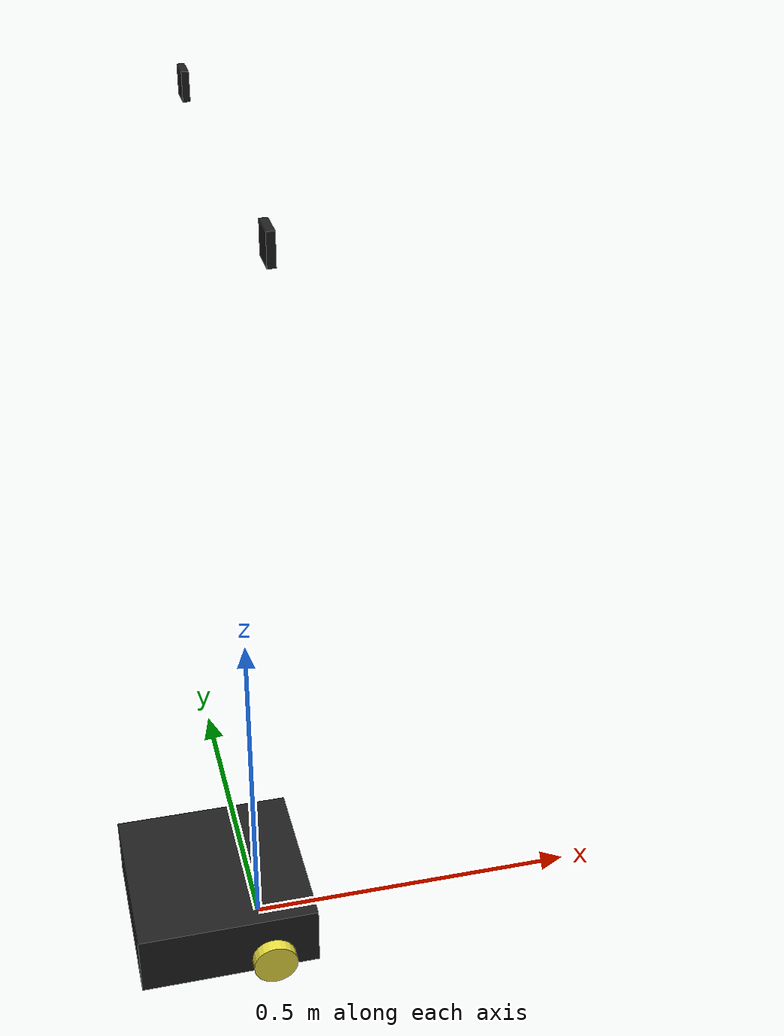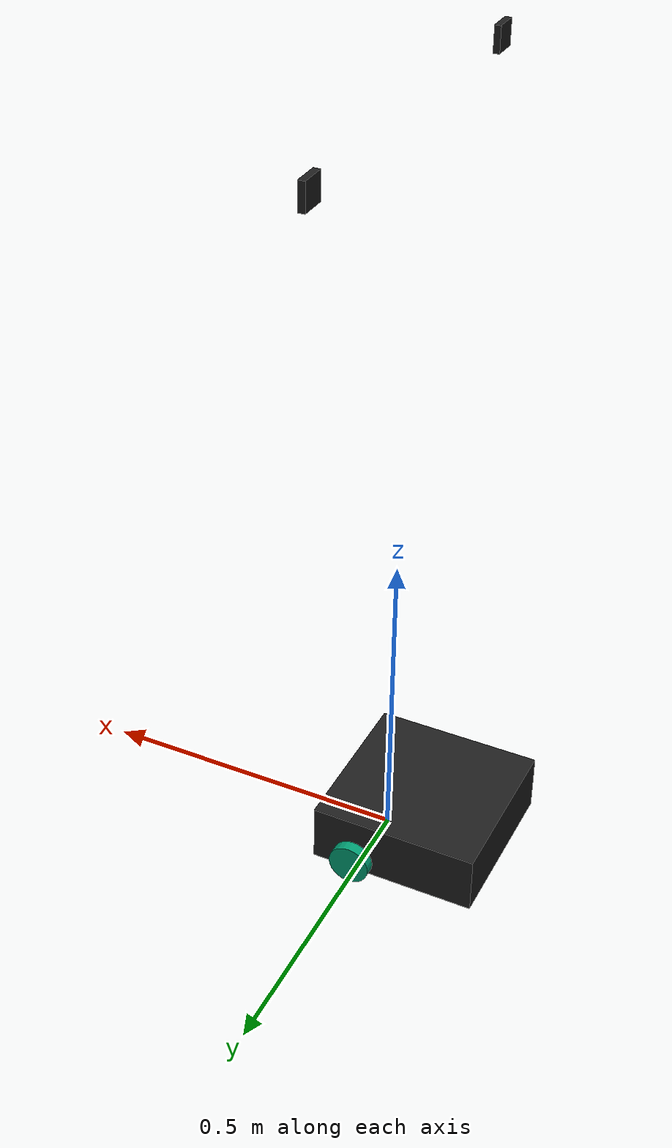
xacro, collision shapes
<?xml version="1.0" ?>
<robot name="turtlebot3_waffle" xmlns:xacro="http://ros.org/wiki/xacro">
  <xacro:include filename="$(find turtlebot3_description)/urdf/common_properties.xacro"/>
  <xacro:include filename="$(find turtlebot3_description)/urdf/turtlebot3_waffle.gazebo.xacro"/>

  <xacro:include filename="$(find stereo_loc)/models/left_camera.xacro"/>
  <xacro:include filename="$(find stereo_loc)/models/right_camera.xacro"/>
  <xacro:property name="r200_cam_rgb_px" value="0.005"/>
  <xacro:property name="r200_cam_rgb_py" value="0.018"/>
  <xacro:property name="r200_cam_rgb_pz" value="0.013"/>
  <xacro:property name="r200_cam_depth_offset" value="0.01"/>

  <link name="base_footprint"/>

  <joint name="base_joint" type="fixed">
    <parent link="base_footprint"/>
    <child link="base_link" />
    <origin xyz="0 0 0.010" rpy="0 0 0"/>
  </joint>

  <link name="base_link">
    <visual>
      <origin xyz="-0.064 0 0.0" rpy="0 0 0"/>
      <geometry>
        <mesh filename="package://turtlebot3_description/meshes/bases/waffle_base.stl" scale="0.001 0.001 0.001"/>
      </geometry>
      <material name="light_black"/>
    </visual>

    <collision>
      <origin xyz="-0.064 0 0.047" rpy="0 0 0"/>
      <geometry>
        <box size="0.266 0.266 0.094"/>
      </geometry>
    </collision>

    <inertial>
      <origin xyz="0 0 0" rpy="0 0 0"/>
      <mass value="1.3729096e+00"/>
      <inertia ixx="8.7002718e-03" ixy="-4.7576583e-05" ixz="1.1160499e-04"
               iyy="8.6195418e-03" iyz="-3.5422299e-06"
               izz="1.4612727e-02" />
    </inertial>
  </link>

  <joint name="wheel_left_joint" type="continuous">
    <parent link="base_link"/>
    <child link="wheel_left_link"/>
    <origin xyz="0.0 0.144 0.023" rpy="-1.57 0 0"/>
    <axis xyz="0 0 1"/>
  </joint>

  <link name="wheel_left_link">
    <visual>
      <origin xyz="0 0 0" rpy="1.57 0 0"/>
      <geometry>
        <mesh filename="package://turtlebot3_description/meshes/wheels/left_tire.stl" scale="0.001 0.001 0.001"/>
      </geometry>
      <material name="dark"/>
    </visual>

    <collision>
      <origin xyz="0 0 0" rpy="0 0 0"/>
      <geometry>
        <cylinder length="0.018" radius="0.033"/>
      </geometry>
    </collision>

    <inertial>
      <origin xyz="0 0 0" />
      <mass value="2.8498940e-02" />
      <inertia ixx="1.1175580e-05" ixy="-4.2369783e-11" ixz="-5.9381719e-09"
               iyy="1.1192413e-05" iyz="-1.4400107e-11"
               izz="2.0712558e-05" />
      </inertial>
  </link>

  <joint name="wheel_right_joint" type="continuous">
    <parent link="base_link"/>
    <child link="wheel_right_link"/>
    <origin xyz="0.0 -0.144 0.023" rpy="-1.57 0 0"/>
    <axis xyz="0 0 1"/>
  </joint>

  <link name="wheel_right_link">
    <visual>
      <origin xyz="0 0 0" rpy="1.57 0 0"/>
      <geometry>
        <mesh filename="package://turtlebot3_description/meshes/wheels/right_tire.stl" scale="0.001 0.001 0.001"/>
      </geometry>
      <material name="dark"/>
    </visual>

    <collision>
      <origin xyz="0 0 0" rpy="0 0 0"/>
      <geometry>
        <cylinder length="0.018" radius="0.033"/>
      </geometry>
    </collision>

    <inertial>
      <origin xyz="0 0 0" />
      <mass value="2.8498940e-02" />
      <inertia ixx="1.1175580e-05" ixy="-4.2369783e-11" ixz="-5.9381719e-09"
               iyy="1.1192413e-05" iyz="-1.4400107e-11"
               izz="2.0712558e-05" />
      </inertial>
  </link>

  <joint name="caster_back_right_joint" type="fixed">
    <parent link="base_link"/>
    <child link="caster_back_right_link"/>
    <origin xyz="-0.177 -0.064 -0.004" rpy="-1.57 0 0"/>
  </joint>

  <link name="caster_back_right_link">
    <collision>
      <origin xyz="0 0.001 0" rpy="0 0 0"/>
      <geometry>
        <box size="0.030 0.009 0.020"/>
      </geometry>
    </collision>

    <inertial>
      <origin xyz="0 0 0" />
      <mass value="0.005" />
      <inertia ixx="0.001" ixy="0.0" ixz="0.0"
               iyy="0.001" iyz="0.0"
               izz="0.001" />
    </inertial>
  </link>

  <joint name="caster_back_left_joint" type="fixed">
    <parent link="base_link"/>
    <child link="caster_back_left_link"/>
    <origin xyz="-0.177 0.064 -0.004" rpy="-1.57 0 0"/>
  </joint>

  <link name="caster_back_left_link">
    <collision>
      <origin xyz="0 0.001 0" rpy="0 0 0"/>
      <geometry>
        <box size="0.030 0.009 0.020"/>
      </geometry>
    </collision>

    <inertial>
      <origin xyz="0 0 0" />
      <mass value="0.005" />
      <inertia ixx="0.001" ixy="0.0" ixz="0.0"
               iyy="0.001" iyz="0.0"
               izz="0.001" />
    </inertial>
  </link>

  <joint name="imu_joint" type="fixed">
    <parent link="base_link"/>
    <child link="imu_link"/>
    <origin xyz="0.0 0 0.068" rpy="0 0 0"/>
  </joint>

  <link name="imu_link"/>

  <joint name="camera1_joint" type="fixed">
    <origin xyz="0 0.3 1.2" rpy="0 0 0"/>
    <parent link="base_link"/>
    <child link="camera1_link"/>
  </joint>

  <xacro:left_camera prefix="camera1"/>

  <joint name="camera2_joint" type="fixed">
    <origin xyz="0.0 -0.3 1.2" rpy="0 0 0"/>
    <parent link="base_link"/>
    <child link="camera2_link"/>
  </joint>

  <xacro:right_camera prefix="camera2"/>

</robot>

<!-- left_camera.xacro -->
<robot xmlns:xacro="http://ros.org/wiki/xacro" name="camera">

    <xacro:macro name="left_camera" params="prefix:=camera">
        <!-- Create laser reference frame -->
        <link name="${prefix}_link">
            <inertial>
                <mass value="0.0" />
                <origin xyz="0 0 0" />
                <inertia ixx="0.01" ixy="0.0" ixz="0.0"
                         iyy="0.01" iyz="0.0"
                         izz="0.01" />
            </inertial>

            <visual>
                <origin xyz=" 0 0 0 " rpy="0 0 0" />
                <geometry>
                    <box size="0.01 0.04 0.04" />
                </geometry>
                <material name="black"/>
            </visual>

            <collision>
                <origin xyz="0.0 0.0 0.0" rpy="0 0 0" />
                <geometry>
                    <box size="0.01 0.04 0.04" />
                </geometry>
            </collision>
        </link>
        <gazebo reference="${prefix}_link">
            <material>Gazebo/Black</material>
        </gazebo>

        <gazebo reference="${prefix}_link">
            <sensor type="camera" name="camera_node">
                <update_rate>30.0</update_rate>
                <camera name="head">
                    <horizontal_fov>0.28</horizontal_fov>
                    <image>
                        <width>1280</width>
                        <height>720</height>
                        <format>R8G8B8</format>
                    </image>
                    <clip>
                        <near>0.02</near>
                        <far>300</far>
                    </clip>
                    <noise>
                        <type>gaussian</type>
                        <mean>0.0</mean>
                        <stddev>0.000</stddev>
                    </noise>
                </camera>
                <plugin name="gazebo_camera" filename="libgazebo_ros_camera.so">
                    <alwaysOn>true</alwaysOn>
                    <updateRate>0.0</updateRate>
                    <cameraName>left_camera</cameraName>
                    <imageTopicName>image_raw</imageTopicName>
                    <cameraInfoTopicName>camera_info</cameraInfoTopicName>
                    <frameName>camera_link</frameName>
                    <hackBaseline>0.07</hackBaseline>
                    <distortionK1>0.0</distortionK1>
                    <distortionK2>0.0</distortionK2>
                    <distortionK3>0.0</distortionK3>
                    <distortionT1>0.0</distortionT1>
                    <distortionT2>0.0</distortionT2>
                </plugin>
            </sensor>
        </gazebo>

    </xacro:macro>
</robot>

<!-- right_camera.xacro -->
<robot xmlns:xacro="http://ros.org/wiki/xacro" name="camera">

    <xacro:macro name="right_camera" params="prefix:=camera">
        <!-- Create laser reference frame -->
        <link name="${prefix}_link">
            <inertial>
                <mass value="0.0" />
                <origin xyz="0 0 0" />
                <inertia ixx="0.01" ixy="0.0" ixz="0.0"
                         iyy="0.01" iyz="0.0"
                         izz="0.01" />
            </inertial>

            <visual>
                <origin xyz=" 0 0 0 " rpy="0 0 0" />
                <geometry>
                    <box size="0.01 0.04 0.04" />
                </geometry>
                <material name="black"/>
            </visual>

            <collision>
                <origin xyz="0.0 0.0 0.0" rpy="0 0 0" />
                <geometry>
                    <box size="0.01 0.04 0.04" />
                </geometry>
            </collision>
        </link>
        <gazebo reference="${prefix}_link">
            <material>Gazebo/Black</material>
        </gazebo>

        <gazebo reference="${prefix}_link">
            <sensor type="camera" name="camera_node">
                <update_rate>30.0</update_rate>
                <camera name="head">
                    <horizontal_fov>0.28</horizontal_fov>
                    <image>
                        <width>1280</width>
                        <height>720</height>
                        <format>R8G8B8</format>
                    </image>
                    <clip>
                        <near>0.02</near>
                        <far>300</far>
                    </clip>
                    <noise>
                        <type>gaussian</type>
                        <mean>0.0</mean>
                        <stddev>0.000</stddev>
                    </noise>
                </camera>
                <plugin name="gazebo_camera" filename="libgazebo_ros_camera.so">
                    <alwaysOn>true</alwaysOn>
                    <updateRate>0.0</updateRate>
                    <cameraName>right_camera</cameraName>
                    <imageTopicName>image_raw</imageTopicName>
                    <cameraInfoTopicName>camera_info</cameraInfoTopicName>
                    <frameName>camera_link</frameName>
                    <hackBaseline>0.07</hackBaseline>
                    <distortionK1>0.0</distortionK1>
                    <distortionK2>0.0</distortionK2>
                    <distortionK3>0.0</distortionK3>
                    <distortionT1>0.0</distortionT1>
                    <distortionT2>0.0</distortionT2>
                </plugin>
            </sensor>
        </gazebo>

    </xacro:macro>
</robot>
